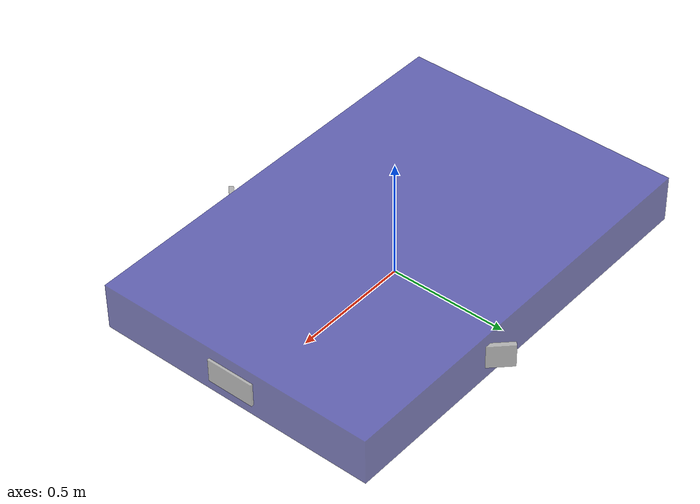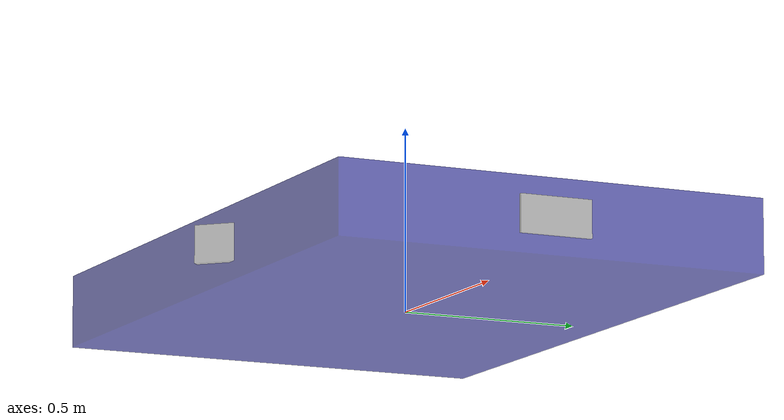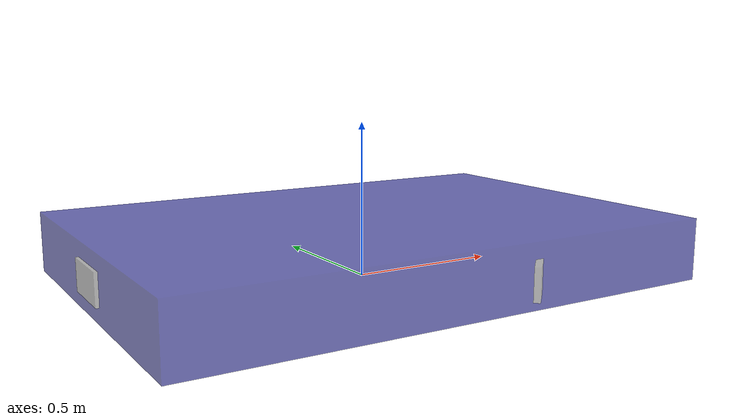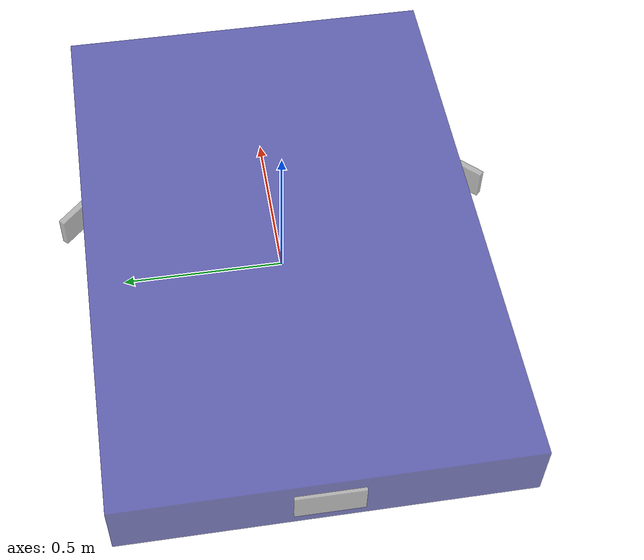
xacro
<?xml version="1.0"?>
<robot name="ship_lidars" xmlns:xacro="http://www.ros.org/wiki/xacro">

    <xacro:property name="ship_length" value="1.76" />
    <xacro:property name="ship_width" value="1.2" />
    <xacro:property name="ship_height" value="0.2" />

    <material name="grey">
        <color rgba="0.5 0.5 0.5 0.6"/>
    </material>

    <material name="blue">
        <color rgba="0.0 0.0 0.5 0.6"/>
    </material>

    <link name="base_link">
        <visual>
            <geometry>
                <box size="${ship_length} ${ship_width} ${ship_height}"/>
            </geometry>
            <origin xyz="0.0 0.0 ${ship_height/2.0}" rpy="0.0 0.0 0.0"/>
            <material name="blue"/>
        </visual>
    </link>

    <xacro:macro name="lidar_sensor_link" params="position">
        <link name="${position}_lidar_link">
            <visual>
                <geometry>
                    <box size="0.02 0.2 0.1"/>
                </geometry>
                <origin xyz="0.0 0.0 0.0" rpy="0.0 0.0 0.0"/>
                <material name="grey"/>
            </visual>
        </link>
    </xacro:macro>

    <xacro:lidar_sensor_link position="f"/>
    <xacro:lidar_sensor_link position="r"/>
    <xacro:lidar_sensor_link position="b"/>
    <xacro:lidar_sensor_link position="l"/>

    <joint name="base_f_lidar_joint" type="fixed">
        <parent link="base_link"/>
        <child link="f_lidar_link"/>
        <origin xyz="${ship_length/2.0} 0.0 ${ship_height/2.0}" rpy="0.0 0.0 0.0"/>
    </joint>

    <joint name="base_r_lidar_joint" type="fixed">
        <parent link="base_link"/>
        <child link="r_lidar_link"/>
        <origin xyz="0.22 ${-ship_width/2.0} ${ship_height/2.0}" rpy="0.0 0.0 -0.78"/>
    </joint>

    <joint name="base_b_lidar_joint" type="fixed">
        <parent link="base_link"/>
        <child link="b_lidar_link"/>
        <origin xyz="${-ship_length/2.0} 0.0 ${ship_height/2.0}" rpy="0.0 0.0 3.14"/>
    </joint>

    <joint name="base_l_lidar_joint" type="fixed">
        <parent link="base_link"/>
        <child link="l_lidar_link"/>
        <origin xyz="0.22 ${ship_width/2.0} ${ship_height/2.0}" rpy="0.0 0.0 0.78"/>
    </joint>

</robot>
